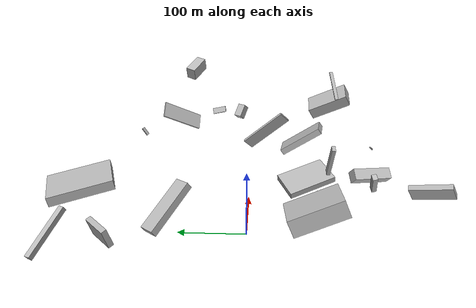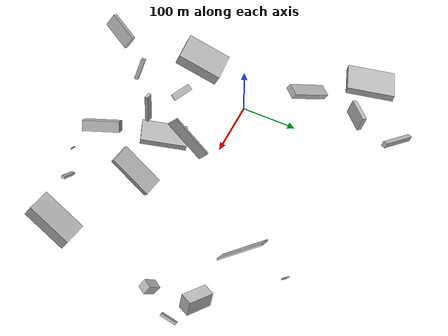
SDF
<sdf version="1.6">
 <world name="default">
  <scene>
   <sky><clouds><speed>12</speed></clouds></sky>
   <ambient>0.4 0.4 0.4 1</ambient>
   <background>0.7 0.7 0.7 1</background>
   <shadows>1</shadows>
  </scene>
  <gravity>0 0 -9.8066</gravity>
  <magnetic_field>6e-06 2.3e-05 -4.2e-05</magnetic_field>
  <physics default="0" name="default_physics" type="ode">
   <ode>
    <solver>
     <type>quick</type>
     <iters>10</iters>
     <sor>1.0</sor>
     <use_dynamic_moi_rescaling>0</use_dynamic_moi_rescaling>
    </solver>
    <constraints>
     <cfm>0</cfm>
     <erp>0.2</erp>
     <contact_max_correcting_vel>100</contact_max_correcting_vel>
     <contact_surface_layer>0.001</contact_surface_layer>
    </constraints>
   </ode>
   <max_step_size>0.004</max_step_size>
   <real_time_factor>1</real_time_factor>
   <real_time_update_rate>250</real_time_update_rate>
  </physics>
  <light name="sun" type="directional">
   <pose>0 0 10 0 0 0</pose>
   <diffuse>0.8 0.8 0.8 1</diffuse>
   <specular>0.2 0.2 0.2 1</specular>
   <attenuation>
    <range>1000</range>
    <constant>0.9</constant>
    <linear>0.01</linear>
    <quadratic>0.001</quadratic>
   </attenuation>
   <direction>-0.5 0.1 -0.9</direction>
  </light>
  <model name="building_1">
   <static>0</static>
   <pose>-47.770305164942805 167.90614347494315 122.30906086373665 -2.7945549683492663 1.4136435641017964 -0.886359911966274</pose>
   <link name="link">
    <gravity>0</gravity>
    <pose>0 0 40.0 0 0 0</pose>
    <collision name="collision"><geometry><box><size>13 52 80</size></box></geometry></collision>
    <visual name="visual">
     <cast_shadows>0</cast_shadows>
     <geometry><box><size>13 52 80</size></box></geometry>
     <material>
      <script>
       <uri>model://HANNAS_wall/materials/scripts</uri>
       <uri>model://HANNAS_wall/materials/textures</uri>
       <name>vrc/HANNAS_wall</name>
      </script>
     </material>
    </visual>
   </link>
  </model>
  <model name="building_2">
   <static>0</static>
   <pose>355.77346447435843 -154.5136862508807 57.538045346350074 1.0397255661409954 -1.0203444398357302 1.9916388657094939</pose>
   <link name="link">
    <gravity>0</gravity>
    <pose>0 0 21.5 0 0 0</pose>
    <collision name="collision"><geometry><box><size>23 80 43</size></box></geometry></collision>
    <visual name="visual">
     <cast_shadows>0</cast_shadows>
     <geometry><box><size>23 80 43</size></box></geometry>
     <material>
      <script>
       <uri>model://HANNAS_wall/materials/scripts</uri>
       <uri>model://HANNAS_wall/materials/textures</uri>
       <name>vrc/HANNAS_wall</name>
      </script>
     </material>
    </visual>
   </link>
  </model>
  <model name="building_3">
   <static>0</static>
   <pose>40.59188274688992 -184.17894078777488 61.84684333637975 -1.0208676067654538 -0.22185799228730868 -1.4747145468736307</pose>
   <link name="link">
    <gravity>0</gravity>
    <pose>0 0 4.5 0 0 0</pose>
    <collision name="collision"><geometry><box><size>7 39 9</size></box></geometry></collision>
    <visual name="visual">
     <cast_shadows>0</cast_shadows>
     <geometry><box><size>7 39 9</size></box></geometry>
     <material>
      <script>
       <uri>model://HANNAS_wall/materials/scripts</uri>
       <uri>model://HANNAS_wall/materials/textures</uri>
       <name>vrc/HANNAS_wall</name>
      </script>
     </material>
    </visual>
   </link>
  </model>
  <model name="building_4">
   <static>0</static>
   <pose>291.4355012440537 209.47046041999067 26.44843882189907 2.1022666483584533 0.2500914239039588 2.6389532835270253</pose>
   <link name="link">
    <gravity>0</gravity>
    <pose>0 0 1.0 0 0 0</pose>
    <collision name="collision"><geometry><box><size>6 16 2</size></box></geometry></collision>
    <visual name="visual">
     <cast_shadows>0</cast_shadows>
     <geometry><box><size>6 16 2</size></box></geometry>
     <material>
      <script>
       <uri>model://HANNAS_wall/materials/scripts</uri>
       <uri>model://HANNAS_wall/materials/textures</uri>
       <name>vrc/HANNAS_wall</name>
      </script>
     </material>
    </visual>
   </link>
  </model>
  <model name="building_5">
   <static>0</static>
   <pose>-62.87587928260773 125.37123422740247 45.924432800887935 0.22087628972487267 -1.004741432148329 2.2447567168552567</pose>
   <link name="link">
    <gravity>0</gravity>
    <pose>0 0 40.0 0 0 0</pose>
    <collision name="collision"><geometry><box><size>11 23 80</size></box></geometry></collision>
    <visual name="visual">
     <cast_shadows>0</cast_shadows>
     <geometry><box><size>11 23 80</size></box></geometry>
     <material>
      <script>
       <uri>model://HANNAS_wall/materials/scripts</uri>
       <uri>model://HANNAS_wall/materials/textures</uri>
       <name>vrc/HANNAS_wall</name>
      </script>
     </material>
    </visual>
   </link>
  </model>
  <model name="building_6">
   <static>0</static>
   <pose>-24.53556032752499 -88.94191412734958 73.21757826606358 -2.7532884816141845 -0.07287850315129184 -3.074228287541014</pose>
   <link name="link">
    <gravity>0</gravity>
    <pose>0 0 13.5 0 0 0</pose>
    <collision name="collision"><geometry><box><size>49 80 27</size></box></geometry></collision>
    <visual name="visual">
     <cast_shadows>0</cast_shadows>
     <geometry><box><size>49 80 27</size></box></geometry>
     <material>
      <script>
       <uri>model://HANNAS_wall/materials/scripts</uri>
       <uri>model://HANNAS_wall/materials/textures</uri>
       <name>vrc/HANNAS_wall</name>
      </script>
     </material>
    </visual>
   </link>
  </model>
  <model name="building_7">
   <static>0</static>
   <pose>228.71488690256083 -94.31630687763113 42.87239807768827 -0.012447008296744964 -0.631157063839703 -1.7144491944275488</pose>
   <link name="link">
    <gravity>0</gravity>
    <pose>0 0 5.5 0 0 0</pose>
    <collision name="collision"><geometry><box><size>80 34 11</size></box></geometry></collision>
    <visual name="visual">
     <cast_shadows>0</cast_shadows>
     <geometry><box><size>80 34 11</size></box></geometry>
     <material>
      <script>
       <uri>model://HANNAS_wall/materials/scripts</uri>
       <uri>model://HANNAS_wall/materials/textures</uri>
       <name>vrc/HANNAS_wall</name>
      </script>
     </material>
    </visual>
   </link>
  </model>
  <model name="building_8">
   <static>0</static>
   <pose>149.84052083979915 -82.96628389159959 26.39783573494509 1.7469930457392422 -0.19799019488583622 -1.1689086391283274</pose>
   <link name="link">
    <gravity>0</gravity>
    <pose>0 0 25.0 0 0 0</pose>
    <collision name="collision"><geometry><box><size>80 10 50</size></box></geometry></collision>
    <visual name="visual">
     <cast_shadows>0</cast_shadows>
     <geometry><box><size>80 10 50</size></box></geometry>
     <material>
      <script>
       <uri>model://HANNAS_wall/materials/scripts</uri>
       <uri>model://HANNAS_wall/materials/textures</uri>
       <name>vrc/HANNAS_wall</name>
      </script>
     </material>
    </visual>
   </link>
  </model>
  <model name="building_9">
   <static>0</static>
   <pose>429.0796531798881 62.17304930388048 21.67423824151588 -1.8597183263770631 0.5568322035374967 -0.21103244998413032</pose>
   <link name="link">
    <gravity>0</gravity>
    <pose>0 0 14.0 0 0 0</pose>
    <collision name="collision"><geometry><box><size>4 12 28</size></box></geometry></collision>
    <visual name="visual">
     <cast_shadows>0</cast_shadows>
     <geometry><box><size>4 12 28</size></box></geometry>
     <material>
      <script>
       <uri>model://HANNAS_wall/materials/scripts</uri>
       <uri>model://HANNAS_wall/materials/textures</uri>
       <name>vrc/HANNAS_wall</name>
      </script>
     </material>
    </visual>
   </link>
  </model>
  <model name="building_10">
   <static>0</static>
   <pose>147.66466454953488 -206.1699700553905 23.179139342121147 2.9991802928122584 0.7353616583468888 -2.9224201864818493</pose>
   <link name="link">
    <gravity>0</gravity>
    <pose>0 0 9.5 0 0 0</pose>
    <collision name="collision"><geometry><box><size>19 67 19</size></box></geometry></collision>
    <visual name="visual">
     <cast_shadows>0</cast_shadows>
     <geometry><box><size>19 67 19</size></box></geometry>
     <material>
      <script>
       <uri>model://HANNAS_wall/materials/scripts</uri>
       <uri>model://HANNAS_wall/materials/textures</uri>
       <name>vrc/HANNAS_wall</name>
      </script>
     </material>
    </visual>
   </link>
  </model>
  <model name="building_11">
   <static>0</static>
   <pose>407.2397220993894 132.84902422483808 108.31759388986586 -0.3976722949008839 -1.1944498443483549 3.0531652906985074</pose>
   <link name="link">
    <gravity>0</gravity>
    <pose>0 0 21.0 0 0 0</pose>
    <collision name="collision"><geometry><box><size>25 20 42</size></box></geometry></collision>
    <visual name="visual">
     <cast_shadows>0</cast_shadows>
     <geometry><box><size>25 20 42</size></box></geometry>
     <material>
      <script>
       <uri>model://HANNAS_wall/materials/scripts</uri>
       <uri>model://HANNAS_wall/materials/textures</uri>
       <name>vrc/HANNAS_wall</name>
      </script>
     </material>
    </visual>
   </link>
  </model>
  <model name="building_12">
   <static>0</static>
   <pose>-10.720038402525066 -243.20658820006776 92.28494582947235 -2.797106593000137 0.5515913755797152 2.8951215712664164</pose>
   <link name="link">
    <gravity>0</gravity>
    <pose>0 0 13.0 0 0 0</pose>
    <collision name="collision"><geometry><box><size>8 57 26</size></box></geometry></collision>
    <visual name="visual">
     <cast_shadows>0</cast_shadows>
     <geometry><box><size>8 57 26</size></box></geometry>
     <material>
      <script>
       <uri>model://HANNAS_wall/materials/scripts</uri>
       <uri>model://HANNAS_wall/materials/textures</uri>
       <name>vrc/HANNAS_wall</name>
      </script>
     </material>
    </visual>
   </link>
  </model>
  <model name="building_13">
   <static>0</static>
   <pose>107.48079914249847 -129.18152036979706 61.848254817819864 -0.32409772413049237 -1.305310332264556 -2.8212995446744364</pose>
   <link name="link">
    <gravity>0</gravity>
    <pose>0 0 6.0 0 0 0</pose>
    <collision name="collision"><geometry><box><size>51 6 12</size></box></geometry></collision>
    <visual name="visual">
     <cast_shadows>0</cast_shadows>
     <geometry><box><size>51 6 12</size></box></geometry>
     <material>
      <script>
       <uri>model://HANNAS_wall/materials/scripts</uri>
       <uri>model://HANNAS_wall/materials/textures</uri>
       <name>vrc/HANNAS_wall</name>
      </script>
     </material>
    </visual>
   </link>
  </model>
  <model name="building_14">
   <static>0</static>
   <pose>225.4944713603681 -216.4076818074322 30.898734350064473 0.3313691857069172 0.7413200721060459 -1.0863117508912263</pose>
   <link name="link">
    <gravity>0</gravity>
    <pose>0 0 1.0 0 0 0</pose>
    <collision name="collision"><geometry><box><size>9 2 2</size></box></geometry></collision>
    <visual name="visual">
     <cast_shadows>0</cast_shadows>
     <geometry><box><size>9 2 2</size></box></geometry>
     <material>
      <script>
       <uri>model://HANNAS_wall/materials/scripts</uri>
       <uri>model://HANNAS_wall/materials/textures</uri>
       <name>vrc/HANNAS_wall</name>
      </script>
     </material>
    </visual>
   </link>
  </model>
  <model name="building_15">
   <static>0</static>
   <pose>-64.99461147871574 179.53620599841722 33.89847705304324 1.5949553299212784 -1.2932835993293823 2.3445799229687942</pose>
   <link name="link">
    <gravity>0</gravity>
    <pose>0 0 21.5 0 0 0</pose>
    <collision name="collision"><geometry><box><size>29 8 43</size></box></geometry></collision>
    <visual name="visual">
     <cast_shadows>0</cast_shadows>
     <geometry><box><size>29 8 43</size></box></geometry>
     <material>
      <script>
       <uri>model://HANNAS_wall/materials/scripts</uri>
       <uri>model://HANNAS_wall/materials/textures</uri>
       <name>vrc/HANNAS_wall</name>
      </script>
     </material>
    </visual>
   </link>
  </model>
  <model name="building_16">
   <static>0</static>
   <pose>292.5701872358904 134.38130509087847 61.09232778331935 -2.415786232686416 -0.7314628250043224 -0.02405391285320056</pose>
   <link name="link">
    <gravity>0</gravity>
    <pose>0 0 1.5 0 0 0</pose>
    <collision name="collision"><geometry><box><size>29 80 3</size></box></geometry></collision>
    <visual name="visual">
     <cast_shadows>0</cast_shadows>
     <geometry><box><size>29 80 3</size></box></geometry>
     <material>
      <script>
       <uri>model://HANNAS_wall/materials/scripts</uri>
       <uri>model://HANNAS_wall/materials/textures</uri>
       <name>vrc/HANNAS_wall</name>
      </script>
     </material>
    </visual>
   </link>
  </model>
  <model name="building_17">
   <static>0</static>
   <pose>392.07200164298274 30.559498407496644 18.828530131685234 -0.7067766869435925 -0.017294901666170412 -2.132819626393665</pose>
   <link name="link">
    <gravity>0</gravity>
    <pose>0 0 13.0 0 0 0</pose>
    <collision name="collision"><geometry><box><size>16 16 26</size></box></geometry></collision>
    <visual name="visual">
     <cast_shadows>0</cast_shadows>
     <geometry><box><size>16 16 26</size></box></geometry>
     <material>
      <script>
       <uri>model://HANNAS_wall/materials/scripts</uri>
       <uri>model://HANNAS_wall/materials/textures</uri>
       <name>vrc/HANNAS_wall</name>
      </script>
     </material>
    </visual>
   </link>
  </model>
  <model name="building_18">
   <static>0</static>
   <pose>320.65185332461937 -157.93163073274997 117.06628434675618 1.7852634520871877 -0.6779028147575408 3.0883150313304353</pose>
   <link name="link">
    <gravity>0</gravity>
    <pose>0 0 3.0 0 0 0</pose>
    <collision name="collision"><geometry><box><size>4 56 6</size></box></geometry></collision>
    <visual name="visual">
     <cast_shadows>0</cast_shadows>
     <geometry><box><size>4 56 6</size></box></geometry>
     <material>
      <script>
       <uri>model://HANNAS_wall/materials/scripts</uri>
       <uri>model://HANNAS_wall/materials/textures</uri>
       <name>vrc/HANNAS_wall</name>
      </script>
     </material>
    </visual>
   </link>
  </model>
  <model name="building_19">
   <static>0</static>
   <pose>-5.942167653767504 261.0369632515591 41.076999160415866 3.068993167452137 -1.046708550940816 2.7905249099459257</pose>
   <link name="link">
    <gravity>0</gravity>
    <pose>0 0 40.0 0 0 0</pose>
    <collision name="collision"><geometry><box><size>9 8 80</size></box></geometry></collision>
    <visual name="visual">
     <cast_shadows>0</cast_shadows>
     <geometry><box><size>9 8 80</size></box></geometry>
     <material>
      <script>
       <uri>model://HANNAS_wall/materials/scripts</uri>
       <uri>model://HANNAS_wall/materials/textures</uri>
       <name>vrc/HANNAS_wall</name>
      </script>
     </material>
    </visual>
   </link>
  </model>
  <model name="building_20">
   <static>0</static>
   <pose>46.26824307415118 -96.6688024859069 39.15624898111444 -1.054410565966469 -0.11248804719500151 2.660699216430472</pose>
   <link name="link">
    <gravity>0</gravity>
    <pose>0 0 6.0 0 0 0</pose>
    <collision name="collision"><geometry><box><size>37 2 12</size></box></geometry></collision>
    <visual name="visual">
     <cast_shadows>0</cast_shadows>
     <geometry><box><size>37 2 12</size></box></geometry>
     <material>
      <script>
       <uri>model://HANNAS_wall/materials/scripts</uri>
       <uri>model://HANNAS_wall/materials/textures</uri>
       <name>vrc/HANNAS_wall</name>
      </script>
     </material>
    </visual>
   </link>
  </model>
  <model name="building_21">
   <static>0</static>
   <pose>164.34917052050636 3.628651835249186 65.90810286659993 -0.4061583366698814 -0.7624518283307358 2.002752906912211</pose>
   <link name="link">
    <gravity>0</gravity>
    <pose>0 0 40.0 0 0 0</pose>
    <collision name="collision"><geometry><box><size>20 4 80</size></box></geometry></collision>
    <visual name="visual">
     <cast_shadows>0</cast_shadows>
     <geometry><box><size>20 4 80</size></box></geometry>
     <material>
      <script>
       <uri>model://HANNAS_wall/materials/scripts</uri>
       <uri>model://HANNAS_wall/materials/textures</uri>
       <name>vrc/HANNAS_wall</name>
      </script>
     </material>
    </visual>
   </link>
  </model>
 </world>
</sdf>
